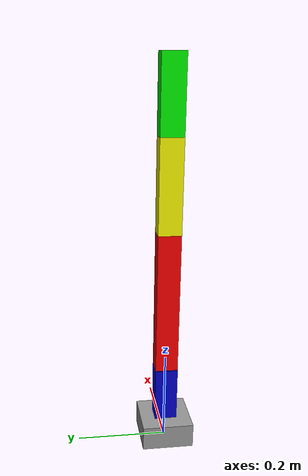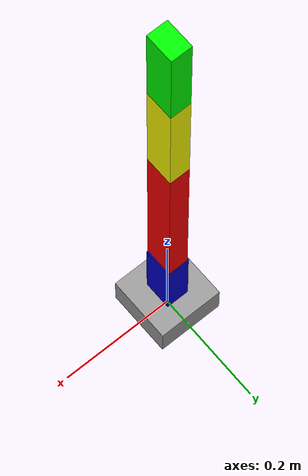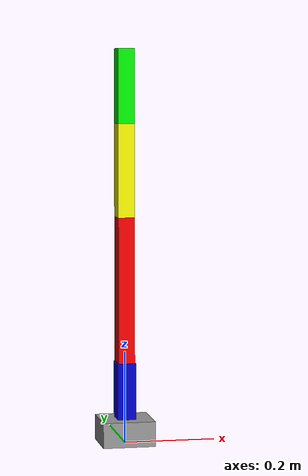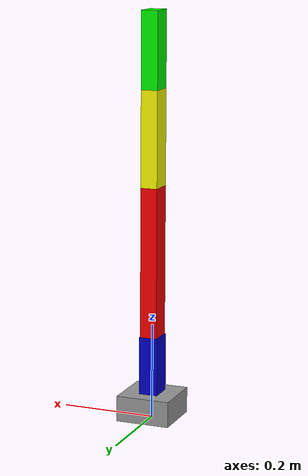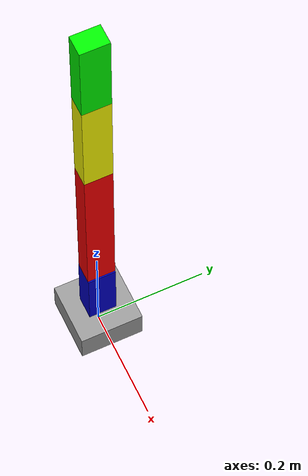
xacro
<?xml version="1.0"?>
<robot xmlns:xacro="http://www.ros.org/wiki/xacro" name="ur10">
    <xacro:include filename="arm.urdf" />
    <link name="world" />
    <joint name="base_to_world" type="fixed">
        <parent link="world" />
        <child link="link_0" />
    </joint>
    <xacro:include filename="additional-info.xacro.urdf" />
</robot>

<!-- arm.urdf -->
<robot name="arm" xmlns:xacro="http://ros.org/wiki/xacro">
    <material name="omni/Blue">
        <color rgba="0 0 0.8 1" />
    </material>
    <material name="omni/Red">
        <color rgba="1 0 0 1" />
    </material>
    <material name="omni/Green">
        <color rgba="0 1 0 1" />
    </material>
    <material name="omni/Yellow">
        <color rgba="1 1 0 1" />
    </material>
    <material name="omni/LightGrey">
        <color rgba="0.6 0.6 0.6 1" />
    </material>
    <material name="omni/DarkGrey">
        <color rgba="0.4 0.4 0.4 1" />
    </material>
    <link name="link_0">
        <visual>
            <origin rpy="0 0 0" xyz="0 0 0.02725" />
            <geometry>
                <box size="0.1143 0.1143 0.0545" />
            </geometry>
            <material name="omni/LightGrey" />
        </visual>
        <collision>
            <origin rpy="0 0 0" xyz="0 0 0.02725" />
            <geometry>
                <box size="0.1143 0.1143 0.0545" />
            </geometry>
        </collision>
        <inertial>
            <origin rpy="0 0 0" xyz="0 0 0.02725" />
            <mass value="0.2" />
            <inertia ixx="0.000267245666667" ixy="0" ixz="0" iyy="0.000267245666667" iyz="0"
                izz="0.000435483" />
        </inertial>
    </link>
    <joint name="joint_1" type="revolute">
        <parent link="link_0" />
        <child link="link_1" />
        <dynamics damping="3.0" friction="0.3" />
        <limit effort="30.0" lower="-3.1415926535" upper="3.1415926535" velocity="5.0" />
        <origin rpy="0 0 0" xyz="0 0 0.0545" />
        <axis xyz="0 0 1" />
    </joint>
    <link name="link_1">
        <visual>
            <origin rpy="0 0 0" xyz="0 0 0.0615" />
            <geometry>
                <box size="0.0402 0.05 0.123" />
            </geometry>
            <material name="omni/Blue" />
        </visual>
        <collision>
            <origin rpy="0 0 0" xyz="0 0 0.0615" />
            <geometry>
                <box size="0.0402 0.05 0.123" />
            </geometry>
        </collision>
        <inertial>
            <origin rpy="0 0 0" xyz="0 0 0.0615" />
            <mass value="0.190421352" />
            <inertia ixx="0.000279744834534" ixy="0" ixz="0" iyy="0.000265717763008" iyz="0"
                izz="6.53151584738e-05" />
        </inertial>
    </link>
    <joint name="joint_2" type="revolute">
        <parent link="link_1" />
        <child link="link_2" />
        <dynamics damping="3.0" friction="0.3" />
        <limit effort="30.0" lower="-1.57079632679" upper="1.57079632679" velocity="5.0" />
        <origin rpy="0 0 0" xyz="0 0 0.123" />
        <axis xyz="0 1 0" />
    </joint>
    <link name="link_2">
        <visual>
            <origin rpy="0 0 0" xyz="0 0 0.1585" />
            <geometry>
                <box size="0.0356 0.05 0.317" />
            </geometry>
            <material name="omni/Red" />
        </visual>
        <collision>
            <origin rpy="0 0 0" xyz="0 0 0.1585" />
            <geometry>
                <box size="0.0356 0.05 0.317" />
            </geometry>
        </collision>
        <inertial>
            <origin rpy="0 0 0" xyz="0 0 0.1585" />
            <mass value="0.29302326" />
            <inertia ixx="0.00251484771035" ixy="0" ixz="0" iyy="0.00248474836108" iyz="0"
                izz="9.19936757328e-05" />
        </inertial>
    </link>
    <joint name="joint_3" type="revolute">
        <parent link="link_2" />
        <child link="link_3" />
        <dynamics damping="3.0" friction="0.3" />
        <limit effort="30.0" lower="-1.57079632679" upper="1.57079632679" velocity="5.0" />
        <origin rpy="0 0 0" xyz="0 0 0.317" />
        <axis xyz="0 1 0" />
    </joint>
    <link name="link_3">
        <visual>
            <origin rpy="0 0 0" xyz="0 0 0.101" />
            <geometry>
                <box size="0.0356 0.05 0.202" />
            </geometry>
            <material name="omni/Yellow" />
        </visual>
        <collision>
            <origin rpy="0 0 0" xyz="0 0 0.101" />
            <geometry>
                <box size="0.0356 0.05 0.202" />
            </geometry>
        </collision>
        <inertial>
            <origin rpy="0 0 0" xyz="0 0 0.101" />
            <mass value="0.21931466" />
            <inertia ixx="0.000791433503053" ixy="0" ixz="0" iyy="0.000768905501178" iyz="0"
                izz="6.88531064581e-05" />
        </inertial>
    </link>
    <joint name="joint_4" type="revolute">
        <parent link="link_3" />
        <child link="link_4" />
        <dynamics damping="3.0" friction="0.3" />
        <limit effort="30.0" lower="-1.57079632679" upper="1.57079632679" velocity="5.0" />
        <origin rpy="0 0 0" xyz="0 0 0.202" />
        <axis xyz="0 1 0" />
    </joint>
    <link name="link_4">
        <visual>
            <origin rpy="0 0 0" xyz="0 0 0.08025" />
            <geometry>
                <box size="0.0356 0.05 0.1605" />
            </geometry>
            <material name="omni/Green" />
        </visual>
        <collision>
            <origin rpy="0 0 0" xyz="0 0 0.08025" />
            <geometry>
                <box size="0.0356 0.05 0.1605" />
            </geometry>
        </collision>
        <inertial>
            <origin rpy="0 0 0" xyz="0 0 0.08025" />
            <mass value="0.15813986" />
            <inertia ixx="0.00037242266488" ixy="0" ixz="0" iyy="0.000356178538461" iyz="0"
                izz="4.96474819141e-05" />
        </inertial>
    </link>
    <joint name="joint_5" type="fixed">
        <parent link="link_4" />
        <child link="link_5" />
        <origin rpy="0 0 0" xyz="0 0 0.1605" />
    </joint>
    <link name="link_5">
        <inertial>
            <origin rpy="0 0 0" xyz="0 0 0" />
            <mass value="1e-12" />
            <inertia ixx="1e-12" ixy="0" ixz="0" iyy="1e-12" iyz="0" izz="1e-12" />
        </inertial>
    </link>
</robot>
